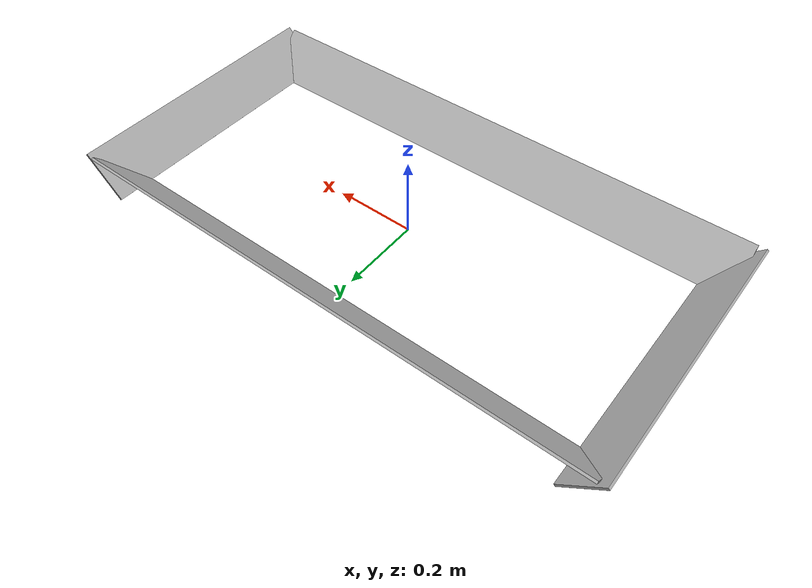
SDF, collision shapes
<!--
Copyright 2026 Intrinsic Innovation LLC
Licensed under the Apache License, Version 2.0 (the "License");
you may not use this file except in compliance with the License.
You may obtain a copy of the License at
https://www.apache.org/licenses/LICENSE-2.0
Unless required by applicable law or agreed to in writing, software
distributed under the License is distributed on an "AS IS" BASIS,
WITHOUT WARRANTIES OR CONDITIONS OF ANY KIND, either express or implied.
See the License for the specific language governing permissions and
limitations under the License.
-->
<?xml version="1.0" ?>

<sdf version="1.9">
  <include>
    <uri>model://intrinsic/models/assets/building_block/building_block_tray</uri>
    <name>building_block_tray</name>
    <static>true</static>
  </include>
</sdf>

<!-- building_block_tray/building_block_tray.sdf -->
<sdf version="1.6">
  <model name="building_block_tray">
    <link name="whole">
      <visual name="visual1">
        <geometry>
          <mesh>
            <uri>model://intrinsic/models/assets/building_block/building_block_tray/building_block_tray.dae</uri>
          </mesh>
        </geometry>
      </visual>
      <collision name="Box001">
        <pose>0.0 -0.298148 0.0491175 2.35619 0.0 0.0</pose>
        <geometry>
          <box>
            <size>1.33888 0.131586 0.006</size>
          </box>
        </geometry>
      </collision>
      <collision name="Box002">
        <pose>0.0 0.298148 0.0491175 -2.35619 0.0 0.0</pose>
        <geometry>
          <box>
            <size>1.33888 0.131586 0.006</size>
          </box>
        </geometry>
      </collision>
      <collision name="Box003">
        <pose>0.643748 0.0 0.0491175 2.35619 0.0 1.5708</pose>
        <geometry>
          <box>
            <size>0.687 0.131586 0.006</size>
          </box>
        </geometry>
      </collision>
      <collision name="Box004">
        <pose>-0.643748 0.0 0.0491175 -2.35619 0.0 1.5708</pose>
        <geometry>
          <box>
            <size>0.687 0.131586 0.006</size>
          </box>
        </geometry>
      </collision>
    </link>
  </model>
</sdf>
